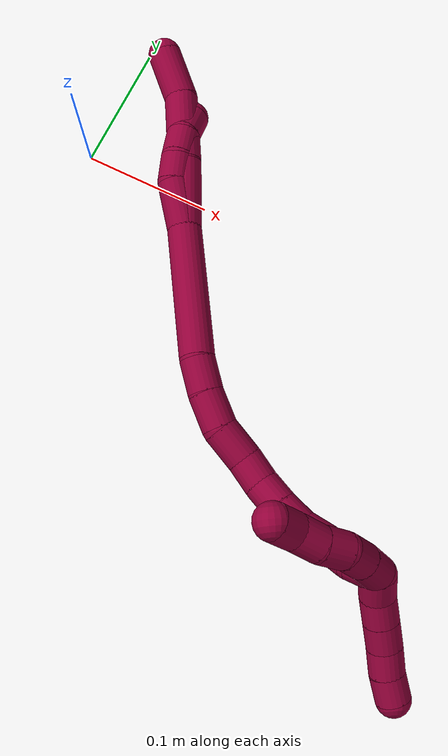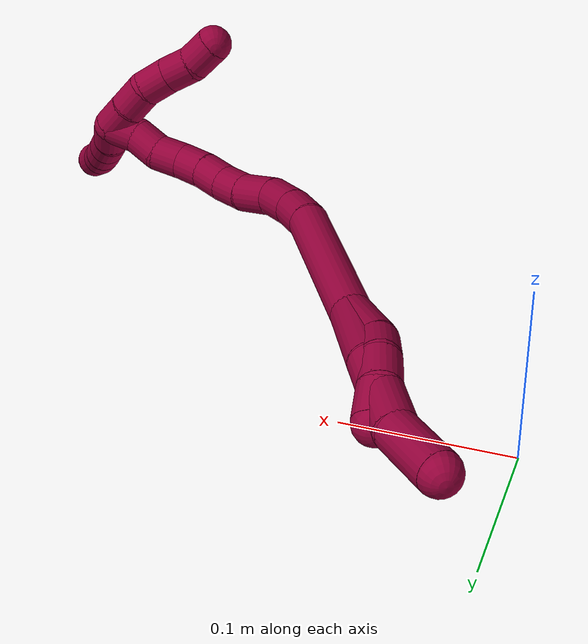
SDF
<sdf version="1.7">
 <world name="default">
  <model name="8">
   <static>0</static>
   <link name="8">
    <collision name="collision-cylinder-e_1_2_8">
     <pose>0.001796 -9.1e-05 -0.026475 3.13815 0.067744 3.04015</pose>
     <geometry><cylinder><radius>0.0125</radius><length>0.053071</length></cylinder></geometry>
     <surface>
      <friction><ode><mu>1.16</mu><mu2>1.16</mu2><slip1>0</slip1><slip2>0</slip2></ode></friction>
      <contact><ode><kp>1e+06</kp><kd>1</kd><max_vel>0</max_vel><min_depth>0.001</min_depth></ode></contact>
     </surface>
    </collision>
    <visual name="visual-cylinder-e_1_2_8">
     <pose>0.001796 -9.1e-05 -0.026475 3.13815 0.067744 3.04015</pose>
     <geometry><cylinder><radius>0.0125</radius><length>0.053071</length></cylinder></geometry>
     <material><ambient>0.584314 0 0.227451 1</ambient></material>
    </visual>
    <collision name="collision-cylinder-e_2_8_9">
     <pose>0.003382 -0.003438 -0.081158 3.0267 -0.007414 -0.128745</pose>
     <geometry><cylinder><radius>0.0125</radius><length>0.056793</length></cylinder></geometry>
     <surface>
      <friction><ode><mu>1.16</mu><mu2>1.16</mu2><slip1>0</slip1><slip2>0</slip2></ode></friction>
      <contact><ode><kp>1e+06</kp><kd>1</kd><max_vel>0</max_vel><min_depth>0.001</min_depth></ode></contact>
     </surface>
    </collision>
    <visual name="visual-cylinder-e_2_8_9">
     <pose>0.003382 -0.003438 -0.081158 3.0267 -0.007414 -0.128745</pose>
     <geometry><cylinder><radius>0.0125</radius><length>0.056793</length></cylinder></geometry>
     <material><ambient>0.584314 0 0.227451 1</ambient></material>
    </visual>
    <collision name="collision-cylinder-e_3_9_6">
     <pose>-0.001738 -0.005431 -0.128783 -3.0767 -0.247157 2.63039</pose>
     <geometry><cylinder><radius>0.0125</radius><length>0.040136</length></cylinder></geometry>
     <surface>
      <friction><ode><mu>1.16</mu><mu2>1.16</mu2><slip1>0</slip1><slip2>0</slip2></ode></friction>
      <contact><ode><kp>1e+06</kp><kd>1</kd><max_vel>0</max_vel><min_depth>0.001</min_depth></ode></contact>
     </surface>
    </collision>
    <visual name="visual-cylinder-e_3_9_6">
     <pose>-0.001738 -0.005431 -0.128783 -3.0767 -0.247157 2.63039</pose>
     <geometry><cylinder><radius>0.0125</radius><length>0.040136</length></cylinder></geometry>
     <material><ambient>0.584314 0 0.227451 1</ambient></material>
    </visual>
    <collision name="collision-cylinder-e_1_2_10">
     <pose>-0.002037 0.00184 -0.018233 -3.04099 -0.110692 1.66644</pose>
     <geometry><cylinder><radius>0.0125</radius><length>0.036876</length></cylinder></geometry>
     <surface>
      <friction><ode><mu>1.16</mu><mu2>1.16</mu2><slip1>0</slip1><slip2>0</slip2></ode></friction>
      <contact><ode><kp>1e+06</kp><kd>1</kd><max_vel>0</max_vel><min_depth>0.001</min_depth></ode></contact>
     </surface>
    </collision>
    <visual name="visual-cylinder-e_1_2_10">
     <pose>-0.002037 0.00184 -0.018233 -3.04099 -0.110692 1.66644</pose>
     <geometry><cylinder><radius>0.0125</radius><length>0.036876</length></cylinder></geometry>
     <material><ambient>0.584314 0 0.227451 1</ambient></material>
    </visual>
    <collision name="collision-cylinder-e_2_10_11">
     <pose>-0.002099 0.003507 -0.046296 3.12389 0.198222 2.96399</pose>
     <geometry><cylinder><radius>0.0125</radius><length>0.020057</length></cylinder></geometry>
     <surface>
      <friction><ode><mu>1.16</mu><mu2>1.16</mu2><slip1>0</slip1><slip2>0</slip2></ode></friction>
      <contact><ode><kp>1e+06</kp><kd>1</kd><max_vel>0</max_vel><min_depth>0.001</min_depth></ode></contact>
     </surface>
    </collision>
    <visual name="visual-cylinder-e_2_10_11">
     <pose>-0.002099 0.003507 -0.046296 3.12389 0.198222 2.96399</pose>
     <geometry><cylinder><radius>0.0125</radius><length>0.020057</length></cylinder></geometry>
     <material><ambient>0.584314 0 0.227451 1</ambient></material>
    </visual>
    <collision name="collision-cylinder-e_3_11_12">
     <pose>0.001881 0.00068 -0.066323 2.88708 0.188035 1.27025</pose>
     <geometry><cylinder><radius>0.0125</radius><length>0.021451</length></cylinder></geometry>
     <surface>
      <friction><ode><mu>1.16</mu><mu2>1.16</mu2><slip1>0</slip1><slip2>0</slip2></ode></friction>
      <contact><ode><kp>1e+06</kp><kd>1</kd><max_vel>0</max_vel><min_depth>0.001</min_depth></ode></contact>
     </surface>
    </collision>
    <visual name="visual-cylinder-e_3_11_12">
     <pose>0.001881 0.00068 -0.066323 2.88708 0.188035 1.27025</pose>
     <geometry><cylinder><radius>0.0125</radius><length>0.021451</length></cylinder></geometry>
     <material><ambient>0.584314 0 0.227451 1</ambient></material>
    </visual>
    <collision name="collision-cylinder-e_4_12_5">
     <pose>0.006466 -0.007222 -0.085609 2.61784 0.241025 0.848719</pose>
     <geometry><cylinder><radius>0.0125</radius><length>0.021616</length></cylinder></geometry>
     <surface>
      <friction><ode><mu>1.16</mu><mu2>1.16</mu2><slip1>0</slip1><slip2>0</slip2></ode></friction>
      <contact><ode><kp>1e+06</kp><kd>1</kd><max_vel>0</max_vel><min_depth>0.001</min_depth></ode></contact>
     </surface>
    </collision>
    <visual name="visual-cylinder-e_4_12_5">
     <pose>0.006466 -0.007222 -0.085609 2.61784 0.241025 0.848719</pose>
     <geometry><cylinder><radius>0.0125</radius><length>0.021616</length></cylinder></geometry>
     <material><ambient>0.584314 0 0.227451 1</ambient></material>
    </visual>
    <collision name="collision-cylinder-e_1_2_13">
     <pose>0.00232 0.004565 0.050487 -0.090168 0.045726 -0.002063</pose>
     <geometry><cylinder><radius>0.0125</radius><length>0.101492</length></cylinder></geometry>
     <surface>
      <friction><ode><mu>1.16</mu><mu2>1.16</mu2><slip1>0</slip1><slip2>0</slip2></ode></friction>
      <contact><ode><kp>1e+06</kp><kd>1</kd><max_vel>0</max_vel><min_depth>0.001</min_depth></ode></contact>
     </surface>
    </collision>
    <visual name="visual-cylinder-e_1_2_13">
     <pose>0.00232 0.004565 0.050487 -0.090168 0.045726 -0.002063</pose>
     <geometry><cylinder><radius>0.0125</radius><length>0.101492</length></cylinder></geometry>
     <material><ambient>0.584314 0 0.227451 1</ambient></material>
    </visual>
    <collision name="collision-cylinder-e_2_13_14">
     <pose>0.006515 0.007984 0.11325 0.092989 0.150997 0.007039</pose>
     <geometry><cylinder><radius>0.0125</radius><length>0.024943</length></cylinder></geometry>
     <surface>
      <friction><ode><mu>1.16</mu><mu2>1.16</mu2><slip1>0</slip1><slip2>0</slip2></ode></friction>
      <contact><ode><kp>1e+06</kp><kd>1</kd><max_vel>0</max_vel><min_depth>0.001</min_depth></ode></contact>
     </surface>
    </collision>
    <visual name="visual-cylinder-e_2_13_14">
     <pose>0.006515 0.007984 0.11325 0.092989 0.150997 0.007039</pose>
     <geometry><cylinder><radius>0.0125</radius><length>0.024943</length></cylinder></geometry>
     <material><ambient>0.584314 0 0.227451 1</ambient></material>
    </visual>
    <collision name="collision-cylinder-e_3_14_15">
     <pose>0.011906 0.004797 0.13801 0.162166 0.271016 0.022158</pose>
     <geometry><cylinder><radius>0.0125</radius><length>0.026257</length></cylinder></geometry>
     <surface>
      <friction><ode><mu>1.16</mu><mu2>1.16</mu2><slip1>0</slip1><slip2>0</slip2></ode></friction>
      <contact><ode><kp>1e+06</kp><kd>1</kd><max_vel>0</max_vel><min_depth>0.001</min_depth></ode></contact>
     </surface>
    </collision>
    <visual name="visual-cylinder-e_3_14_15">
     <pose>0.011906 0.004797 0.13801 0.162166 0.271016 0.022158</pose>
     <geometry><cylinder><radius>0.0125</radius><length>0.026257</length></cylinder></geometry>
     <material><ambient>0.584314 0 0.227451 1</ambient></material>
    </visual>
    <collision name="collision-cylinder-e_4_15_16">
     <pose>0.022145 -0.001539 0.161165 0.382576 0.52899 0.104804</pose>
     <geometry><cylinder><radius>0.0125</radius><length>0.026651</length></cylinder></geometry>
     <surface>
      <friction><ode><mu>1.16</mu><mu2>1.16</mu2><slip1>0</slip1><slip2>0</slip2></ode></friction>
      <contact><ode><kp>1e+06</kp><kd>1</kd><max_vel>0</max_vel><min_depth>0.001</min_depth></ode></contact>
     </surface>
    </collision>
    <visual name="visual-cylinder-e_4_15_16">
     <pose>0.022145 -0.001539 0.161165 0.382576 0.52899 0.104804</pose>
     <geometry><cylinder><radius>0.0125</radius><length>0.026651</length></cylinder></geometry>
     <material><ambient>0.584314 0 0.227451 1</ambient></material>
    </visual>
    <collision name="collision-cylinder-e_5_16_17">
     <pose>0.033747 -0.007182 0.180833 0.148713 0.492164 0.037417</pose>
     <geometry><cylinder><radius>0.0125</radius><length>0.020641</length></cylinder></geometry>
     <surface>
      <friction><ode><mu>1.16</mu><mu2>1.16</mu2><slip1>0</slip1><slip2>0</slip2></ode></friction>
      <contact><ode><kp>1e+06</kp><kd>1</kd><max_vel>0</max_vel><min_depth>0.001</min_depth></ode></contact>
     </surface>
    </collision>
    <visual name="visual-cylinder-e_5_16_17">
     <pose>0.033747 -0.007182 0.180833 0.148713 0.492164 0.037417</pose>
     <geometry><cylinder><radius>0.0125</radius><length>0.020641</length></cylinder></geometry>
     <material><ambient>0.584314 0 0.227451 1</ambient></material>
    </visual>
    <collision name="collision-cylinder-e_6_17_18">
     <pose>0.044366 -0.008187 0.198016 -0.041767 0.611195 -0.013178</pose>
     <geometry><cylinder><radius>0.0125</radius><length>0.020015</length></cylinder></geometry>
     <surface>
      <friction><ode><mu>1.16</mu><mu2>1.16</mu2><slip1>0</slip1><slip2>0</slip2></ode></friction>
      <contact><ode><kp>1e+06</kp><kd>1</kd><max_vel>0</max_vel><min_depth>0.001</min_depth></ode></contact>
     </surface>
    </collision>
    <visual name="visual-cylinder-e_6_17_18">
     <pose>0.044366 -0.008187 0.198016 -0.041767 0.611195 -0.013178</pose>
     <geometry><cylinder><radius>0.0125</radius><length>0.020015</length></cylinder></geometry>
     <material><ambient>0.584314 0 0.227451 1</ambient></material>
    </visual>
    <collision name="collision-cylinder-e_7_18_19">
     <pose>0.05648 -0.008456 0.213889 0.079423 0.690698 0.028587</pose>
     <geometry><cylinder><radius>0.0125</radius><length>0.02</length></cylinder></geometry>
     <surface>
      <friction><ode><mu>1.16</mu><mu2>1.16</mu2><slip1>0</slip1><slip2>0</slip2></ode></friction>
      <contact><ode><kp>1e+06</kp><kd>1</kd><max_vel>0</max_vel><min_depth>0.001</min_depth></ode></contact>
     </surface>
    </collision>
    <visual name="visual-cylinder-e_7_18_19">
     <pose>0.05648 -0.008456 0.213889 0.079423 0.690698 0.028587</pose>
     <geometry><cylinder><radius>0.0125</radius><length>0.02</length></cylinder></geometry>
     <material><ambient>0.584314 0 0.227451 1</ambient></material>
    </visual>
    <collision name="collision-cylinder-e_8_19_20">
     <pose>0.07083 -0.009373 0.227593 0.050663 0.923803 0.025225</pose>
     <geometry><cylinder><radius>0.0125</radius><length>0.020001</length></cylinder></geometry>
     <surface>
      <friction><ode><mu>1.16</mu><mu2>1.16</mu2><slip1>0</slip1><slip2>0</slip2></ode></friction>
      <contact><ode><kp>1e+06</kp><kd>1</kd><max_vel>0</max_vel><min_depth>0.001</min_depth></ode></contact>
     </surface>
    </collision>
    <visual name="visual-cylinder-e_8_19_20">
     <pose>0.07083 -0.009373 0.227593 0.050663 0.923803 0.025225</pose>
     <geometry><cylinder><radius>0.0125</radius><length>0.020001</length></cylinder></geometry>
     <material><ambient>0.584314 0 0.227451 1</ambient></material>
    </visual>
    <collision name="collision-cylinder-e_9_20_21">
     <pose>0.085866 -0.006976 0.240164 -0.39134 0.783257 -0.163338</pose>
     <geometry><cylinder><radius>0.0125</radius><length>0.020001</length></cylinder></geometry>
     <surface>
      <friction><ode><mu>1.16</mu><mu2>1.16</mu2><slip1>0</slip1><slip2>0</slip2></ode></friction>
      <contact><ode><kp>1e+06</kp><kd>1</kd><max_vel>0</max_vel><min_depth>0.001</min_depth></ode></contact>
     </surface>
    </collision>
    <visual name="visual-cylinder-e_9_20_21">
     <pose>0.085866 -0.006976 0.240164 -0.39134 0.783257 -0.163338</pose>
     <geometry><cylinder><radius>0.0125</radius><length>0.020001</length></cylinder></geometry>
     <material><ambient>0.584314 0 0.227451 1</ambient></material>
    </visual>
    <collision name="collision-cylinder-e_10_21_1">
     <pose>0.101584 -0.003788 0.251688 -0.097147 1.04764 -0.056146</pose>
     <geometry><cylinder><radius>0.0125</radius><length>0.02</length></cylinder></geometry>
     <surface>
      <friction><ode><mu>1.16</mu><mu2>1.16</mu2><slip1>0</slip1><slip2>0</slip2></ode></friction>
      <contact><ode><kp>1e+06</kp><kd>1</kd><max_vel>0</max_vel><min_depth>0.001</min_depth></ode></contact>
     </surface>
    </collision>
    <visual name="visual-cylinder-e_10_21_1">
     <pose>0.101584 -0.003788 0.251688 -0.097147 1.04764 -0.056146</pose>
     <geometry><cylinder><radius>0.0125</radius><length>0.02</length></cylinder></geometry>
     <material><ambient>0.584314 0 0.227451 1</ambient></material>
    </visual>
    <collision name="collision-cylinder-e_1_1_22">
     <pose>0.106665 0.005215 0.252837 -1.99266 -0.366258 0.557353</pose>
     <geometry><cylinder><radius>0.0125</radius><length>0.02</length></cylinder></geometry>
     <surface>
      <friction><ode><mu>1.16</mu><mu2>1.16</mu2><slip1>0</slip1><slip2>0</slip2></ode></friction>
      <contact><ode><kp>1e+06</kp><kd>1</kd><max_vel>0</max_vel><min_depth>0.001</min_depth></ode></contact>
     </surface>
    </collision>
    <visual name="visual-cylinder-e_1_1_22">
     <pose>0.106665 0.005215 0.252837 -1.99266 -0.366258 0.557353</pose>
     <geometry><cylinder><radius>0.0125</radius><length>0.02</length></cylinder></geometry>
     <material><ambient>0.584314 0 0.227451 1</ambient></material>
    </visual>
    <collision name="collision-cylinder-e_2_22_23">
     <pose>0.099047 0.022412 0.246121 -1.89261 -0.415605 0.569223</pose>
     <geometry><cylinder><radius>0.0125</radius><length>0.02</length></cylinder></geometry>
     <surface>
      <friction><ode><mu>1.16</mu><mu2>1.16</mu2><slip1>0</slip1><slip2>0</slip2></ode></friction>
      <contact><ode><kp>1e+06</kp><kd>1</kd><max_vel>0</max_vel><min_depth>0.001</min_depth></ode></contact>
     </surface>
    </collision>
    <visual name="visual-cylinder-e_2_22_23">
     <pose>0.099047 0.022412 0.246121 -1.89261 -0.415605 0.569223</pose>
     <geometry><cylinder><radius>0.0125</radius><length>0.02</length></cylinder></geometry>
     <material><ambient>0.584314 0 0.227451 1</ambient></material>
    </visual>
    <collision name="collision-cylinder-e_3_23_24">
     <pose>0.088206 0.0381 0.241083 -1.86771 -0.748184 0.975739</pose>
     <geometry><cylinder><radius>0.0125</radius><length>0.02</length></cylinder></geometry>
     <surface>
      <friction><ode><mu>1.16</mu><mu2>1.16</mu2><slip1>0</slip1><slip2>0</slip2></ode></friction>
      <contact><ode><kp>1e+06</kp><kd>1</kd><max_vel>0</max_vel><min_depth>0.001</min_depth></ode></contact>
     </surface>
    </collision>
    <visual name="visual-cylinder-e_3_23_24">
     <pose>0.088206 0.0381 0.241083 -1.86771 -0.748184 0.975739</pose>
     <geometry><cylinder><radius>0.0125</radius><length>0.02</length></cylinder></geometry>
     <material><ambient>0.584314 0 0.227451 1</ambient></material>
    </visual>
    <collision name="collision-cylinder-e_4_24_25">
     <pose>0.075001 0.051651 0.234912 -2.12244 -0.694728 1.14978</pose>
     <geometry><cylinder><radius>0.0125</radius><length>0.02</length></cylinder></geometry>
     <surface>
      <friction><ode><mu>1.16</mu><mu2>1.16</mu2><slip1>0</slip1><slip2>0</slip2></ode></friction>
      <contact><ode><kp>1e+06</kp><kd>1</kd><max_vel>0</max_vel><min_depth>0.001</min_depth></ode></contact>
     </surface>
    </collision>
    <visual name="visual-cylinder-e_4_24_25">
     <pose>0.075001 0.051651 0.234912 -2.12244 -0.694728 1.14978</pose>
     <geometry><cylinder><radius>0.0125</radius><length>0.02</length></cylinder></geometry>
     <material><ambient>0.584314 0 0.227451 1</ambient></material>
    </visual>
    <collision name="collision-cylinder-e_5_25_4">
     <pose>0.063847 0.066607 0.22831 -1.86789 -0.495257 0.658707</pose>
     <geometry><cylinder><radius>0.0125</radius><length>0.02</length></cylinder></geometry>
     <surface>
      <friction><ode><mu>1.16</mu><mu2>1.16</mu2><slip1>0</slip1><slip2>0</slip2></ode></friction>
      <contact><ode><kp>1e+06</kp><kd>1</kd><max_vel>0</max_vel><min_depth>0.001</min_depth></ode></contact>
     </surface>
    </collision>
    <visual name="visual-cylinder-e_5_25_4">
     <pose>0.063847 0.066607 0.22831 -1.86789 -0.495257 0.658707</pose>
     <geometry><cylinder><radius>0.0125</radius><length>0.02</length></cylinder></geometry>
     <material><ambient>0.584314 0 0.227451 1</ambient></material>
    </visual>
    <collision name="collision-cylinder-e_1_1_26">
     <pose>0.10858 -0.010871 0.262982 0.874867 -0.167405 -0.07843</pose>
     <geometry><cylinder><radius>0.0125</radius><length>0.02</length></cylinder></geometry>
     <surface>
      <friction><ode><mu>1.16</mu><mu2>1.16</mu2><slip1>0</slip1><slip2>0</slip2></ode></friction>
      <contact><ode><kp>1e+06</kp><kd>1</kd><max_vel>0</max_vel><min_depth>0.001</min_depth></ode></contact>
     </surface>
    </collision>
    <visual name="visual-cylinder-e_1_1_26">
     <pose>0.10858 -0.010871 0.262982 0.874867 -0.167405 -0.07843</pose>
     <geometry><cylinder><radius>0.0125</radius><length>0.02</length></cylinder></geometry>
     <material><ambient>0.584314 0 0.227451 1</ambient></material>
    </visual>
    <collision name="collision-cylinder-e_2_26_27">
     <pose>0.106526 -0.024516 0.277234 0.653914 -0.038832 -0.01317</pose>
     <geometry><cylinder><radius>0.0125</radius><length>0.02</length></cylinder></geometry>
     <surface>
      <friction><ode><mu>1.16</mu><mu2>1.16</mu2><slip1>0</slip1><slip2>0</slip2></ode></friction>
      <contact><ode><kp>1e+06</kp><kd>1</kd><max_vel>0</max_vel><min_depth>0.001</min_depth></ode></contact>
     </surface>
    </collision>
    <visual name="visual-cylinder-e_2_26_27">
     <pose>0.106526 -0.024516 0.277234 0.653914 -0.038832 -0.01317</pose>
     <geometry><cylinder><radius>0.0125</radius><length>0.02</length></cylinder></geometry>
     <material><ambient>0.584314 0 0.227451 1</ambient></material>
    </visual>
    <collision name="collision-cylinder-e_3_27_28">
     <pose>0.105755 -0.036479 0.293242 0.629586 -0.038311 -0.012476</pose>
     <geometry><cylinder><radius>0.0125</radius><length>0.02</length></cylinder></geometry>
     <surface>
      <friction><ode><mu>1.16</mu><mu2>1.16</mu2><slip1>0</slip1><slip2>0</slip2></ode></friction>
      <contact><ode><kp>1e+06</kp><kd>1</kd><max_vel>0</max_vel><min_depth>0.001</min_depth></ode></contact>
     </surface>
    </collision>
    <visual name="visual-cylinder-e_3_27_28">
     <pose>0.105755 -0.036479 0.293242 0.629586 -0.038311 -0.012476</pose>
     <geometry><cylinder><radius>0.0125</radius><length>0.02</length></cylinder></geometry>
     <material><ambient>0.584314 0 0.227451 1</ambient></material>
    </visual>
    <collision name="collision-cylinder-e_4_28_29">
     <pose>0.104714 -0.04741 0.309926 0.530348 -0.065857 -0.017891</pose>
     <geometry><cylinder><radius>0.0125</radius><length>0.02</length></cylinder></geometry>
     <surface>
      <friction><ode><mu>1.16</mu><mu2>1.16</mu2><slip1>0</slip1><slip2>0</slip2></ode></friction>
      <contact><ode><kp>1e+06</kp><kd>1</kd><max_vel>0</max_vel><min_depth>0.001</min_depth></ode></contact>
     </surface>
    </collision>
    <visual name="visual-cylinder-e_4_28_29">
     <pose>0.104714 -0.04741 0.309926 0.530348 -0.065857 -0.017891</pose>
     <geometry><cylinder><radius>0.0125</radius><length>0.02</length></cylinder></geometry>
     <material><ambient>0.584314 0 0.227451 1</ambient></material>
    </visual>
    <collision name="collision-cylinder-e_5_29_3">
     <pose>0.104667 -0.057167 0.327334 0.491408 0.061212 0.015355</pose>
     <geometry><cylinder><radius>0.0125</radius><length>0.02</length></cylinder></geometry>
     <surface>
      <friction><ode><mu>1.16</mu><mu2>1.16</mu2><slip1>0</slip1><slip2>0</slip2></ode></friction>
      <contact><ode><kp>1e+06</kp><kd>1</kd><max_vel>0</max_vel><min_depth>0.001</min_depth></ode></contact>
     </surface>
    </collision>
    <visual name="visual-cylinder-e_5_29_3">
     <pose>0.104667 -0.057167 0.327334 0.491408 0.061212 0.015355</pose>
     <geometry><cylinder><radius>0.0125</radius><length>0.02</length></cylinder></geometry>
     <material><ambient>0.584314 0 0.227451 1</ambient></material>
    </visual>
    <collision name="collision-sphere-3">
     <pose>0.105279 -0.061877 0.336134 0 -0 0</pose>
     <geometry><sphere><radius>0.0125</radius></sphere></geometry>
     <surface>
      <friction><ode><mu>1.16</mu><mu2>1.16</mu2><slip1>0</slip1><slip2>0</slip2></ode></friction>
      <contact><ode><kp>1e+06</kp><kd>1</kd><max_vel>0</max_vel><min_depth>0.001</min_depth></ode></contact>
     </surface>
    </collision>
    <visual name="visual-sphere-3">
     <pose>0.105279 -0.061877 0.336134 0 -0 0</pose>
     <geometry><sphere><radius>0.0125</radius></sphere></geometry>
     <material><ambient>0.584314 0 0.227451 1</ambient></material>
    </visual>
    <collision name="collision-sphere-29">
     <pose>0.104056 -0.052457 0.318534 0 -0 0</pose>
     <geometry><sphere><radius>0.0125</radius></sphere></geometry>
     <surface>
      <friction><ode><mu>1.16</mu><mu2>1.16</mu2><slip1>0</slip1><slip2>0</slip2></ode></friction>
      <contact><ode><kp>1e+06</kp><kd>1</kd><max_vel>0</max_vel><min_depth>0.001</min_depth></ode></contact>
     </surface>
    </collision>
    <visual name="visual-sphere-29">
     <pose>0.104056 -0.052457 0.318534 0 -0 0</pose>
     <geometry><sphere><radius>0.0125</radius></sphere></geometry>
     <material><ambient>0.584314 0 0.227451 1</ambient></material>
    </visual>
    <collision name="collision-sphere-28">
     <pose>0.105372 -0.042362 0.301319 0 -0 0</pose>
     <geometry><sphere><radius>0.0125</radius></sphere></geometry>
     <surface>
      <friction><ode><mu>1.16</mu><mu2>1.16</mu2><slip1>0</slip1><slip2>0</slip2></ode></friction>
      <contact><ode><kp>1e+06</kp><kd>1</kd><max_vel>0</max_vel><min_depth>0.001</min_depth></ode></contact>
     </surface>
    </collision>
    <visual name="visual-sphere-28">
     <pose>0.105372 -0.042362 0.301319 0 -0 0</pose>
     <geometry><sphere><radius>0.0125</radius></sphere></geometry>
     <material><ambient>0.584314 0 0.227451 1</ambient></material>
    </visual>
    <collision name="collision-sphere-27">
     <pose>0.106138 -0.030595 0.285165 0 -0 0</pose>
     <geometry><sphere><radius>0.0125</radius></sphere></geometry>
     <surface>
      <friction><ode><mu>1.16</mu><mu2>1.16</mu2><slip1>0</slip1><slip2>0</slip2></ode></friction>
      <contact><ode><kp>1e+06</kp><kd>1</kd><max_vel>0</max_vel><min_depth>0.001</min_depth></ode></contact>
     </surface>
    </collision>
    <visual name="visual-sphere-27">
     <pose>0.106138 -0.030595 0.285165 0 -0 0</pose>
     <geometry><sphere><radius>0.0125</radius></sphere></geometry>
     <material><ambient>0.584314 0 0.227451 1</ambient></material>
    </visual>
    <collision name="collision-sphere-26">
     <pose>0.106914 -0.018438 0.269303 0 -0 0</pose>
     <geometry><sphere><radius>0.0125</radius></sphere></geometry>
     <surface>
      <friction><ode><mu>1.16</mu><mu2>1.16</mu2><slip1>0</slip1><slip2>0</slip2></ode></friction>
      <contact><ode><kp>1e+06</kp><kd>1</kd><max_vel>0</max_vel><min_depth>0.001</min_depth></ode></contact>
     </surface>
    </collision>
    <visual name="visual-sphere-26">
     <pose>0.106914 -0.018438 0.269303 0 -0 0</pose>
     <geometry><sphere><radius>0.0125</radius></sphere></geometry>
     <material><ambient>0.584314 0 0.227451 1</ambient></material>
    </visual>
    <collision name="collision-sphere-4">
     <pose>0.059094 0.07502 0.225735 0 -0 0</pose>
     <geometry><sphere><radius>0.0125</radius></sphere></geometry>
     <surface>
      <friction><ode><mu>1.16</mu><mu2>1.16</mu2><slip1>0</slip1><slip2>0</slip2></ode></friction>
      <contact><ode><kp>1e+06</kp><kd>1</kd><max_vel>0</max_vel><min_depth>0.001</min_depth></ode></contact>
     </surface>
    </collision>
    <visual name="visual-sphere-4">
     <pose>0.059094 0.07502 0.225735 0 -0 0</pose>
     <geometry><sphere><radius>0.0125</radius></sphere></geometry>
     <material><ambient>0.584314 0 0.227451 1</ambient></material>
    </visual>
    <collision name="collision-sphere-25">
     <pose>0.0686 0.058194 0.230886 0 -0 0</pose>
     <geometry><sphere><radius>0.0125</radius></sphere></geometry>
     <surface>
      <friction><ode><mu>1.16</mu><mu2>1.16</mu2><slip1>0</slip1><slip2>0</slip2></ode></friction>
      <contact><ode><kp>1e+06</kp><kd>1</kd><max_vel>0</max_vel><min_depth>0.001</min_depth></ode></contact>
     </surface>
    </collision>
    <visual name="visual-sphere-25">
     <pose>0.0686 0.058194 0.230886 0 -0 0</pose>
     <geometry><sphere><radius>0.0125</radius></sphere></geometry>
     <material><ambient>0.584314 0 0.227451 1</ambient></material>
    </visual>
    <collision name="collision-sphere-24">
     <pose>0.081403 0.045108 0.238938 0 -0 0</pose>
     <geometry><sphere><radius>0.0125</radius></sphere></geometry>
     <surface>
      <friction><ode><mu>1.16</mu><mu2>1.16</mu2><slip1>0</slip1><slip2>0</slip2></ode></friction>
      <contact><ode><kp>1e+06</kp><kd>1</kd><max_vel>0</max_vel><min_depth>0.001</min_depth></ode></contact>
     </surface>
    </collision>
    <visual name="visual-sphere-24">
     <pose>0.081403 0.045108 0.238938 0 -0 0</pose>
     <geometry><sphere><radius>0.0125</radius></sphere></geometry>
     <material><ambient>0.584314 0 0.227451 1</ambient></material>
    </visual>
    <collision name="collision-sphere-23">
     <pose>0.095009 0.031091 0.243227 0 -0 0</pose>
     <geometry><sphere><radius>0.0125</radius></sphere></geometry>
     <surface>
      <friction><ode><mu>1.16</mu><mu2>1.16</mu2><slip1>0</slip1><slip2>0</slip2></ode></friction>
      <contact><ode><kp>1e+06</kp><kd>1</kd><max_vel>0</max_vel><min_depth>0.001</min_depth></ode></contact>
     </surface>
    </collision>
    <visual name="visual-sphere-23">
     <pose>0.095009 0.031091 0.243227 0 -0 0</pose>
     <geometry><sphere><radius>0.0125</radius></sphere></geometry>
     <material><ambient>0.584314 0 0.227451 1</ambient></material>
    </visual>
    <collision name="collision-sphere-22">
     <pose>0.103084 0.013733 0.249014 0 -0 0</pose>
     <geometry><sphere><radius>0.0125</radius></sphere></geometry>
     <surface>
      <friction><ode><mu>1.16</mu><mu2>1.16</mu2><slip1>0</slip1><slip2>0</slip2></ode></friction>
      <contact><ode><kp>1e+06</kp><kd>1</kd><max_vel>0</max_vel><min_depth>0.001</min_depth></ode></contact>
     </surface>
    </collision>
    <visual name="visual-sphere-22">
     <pose>0.103084 0.013733 0.249014 0 -0 0</pose>
     <geometry><sphere><radius>0.0125</radius></sphere></geometry>
     <material><ambient>0.584314 0 0.227451 1</ambient></material>
    </visual>
    <collision name="collision-sphere-1">
     <pose>0.110247 -0.003303 0.25666 0 -0 0</pose>
     <geometry><sphere><radius>0.0125</radius></sphere></geometry>
     <surface>
      <friction><ode><mu>1.16</mu><mu2>1.16</mu2><slip1>0</slip1><slip2>0</slip2></ode></friction>
      <contact><ode><kp>1e+06</kp><kd>1</kd><max_vel>0</max_vel><min_depth>0.001</min_depth></ode></contact>
     </surface>
    </collision>
    <visual name="visual-sphere-1">
     <pose>0.110247 -0.003303 0.25666 0 -0 0</pose>
     <geometry><sphere><radius>0.0125</radius></sphere></geometry>
     <material><ambient>0.584314 0 0.227451 1</ambient></material>
    </visual>
    <collision name="collision-sphere-21">
     <pose>0.092922 -0.004273 0.246715 0 -0 0</pose>
     <geometry><sphere><radius>0.0125</radius></sphere></geometry>
     <surface>
      <friction><ode><mu>1.16</mu><mu2>1.16</mu2><slip1>0</slip1><slip2>0</slip2></ode></friction>
      <contact><ode><kp>1e+06</kp><kd>1</kd><max_vel>0</max_vel><min_depth>0.001</min_depth></ode></contact>
     </surface>
    </collision>
    <visual name="visual-sphere-21">
     <pose>0.092922 -0.004273 0.246715 0 -0 0</pose>
     <geometry><sphere><radius>0.0125</radius></sphere></geometry>
     <material><ambient>0.584314 0 0.227451 1</ambient></material>
    </visual>
    <collision name="collision-sphere-11">
     <pose>-0.000124 0.003333 -0.056126 0 -0 0</pose>
     <geometry><sphere><radius>0.0125</radius></sphere></geometry>
     <surface>
      <friction><ode><mu>1.16</mu><mu2>1.16</mu2><slip1>0</slip1><slip2>0</slip2></ode></friction>
      <contact><ode><kp>1e+06</kp><kd>1</kd><max_vel>0</max_vel><min_depth>0.001</min_depth></ode></contact>
     </surface>
    </collision>
    <visual name="visual-sphere-11">
     <pose>-0.000124 0.003333 -0.056126 0 -0 0</pose>
     <geometry><sphere><radius>0.0125</radius></sphere></geometry>
     <material><ambient>0.584314 0 0.227451 1</ambient></material>
    </visual>
    <collision name="collision-sphere-10">
     <pose>-0.004074 0.003681 -0.036465 0 -0 0</pose>
     <geometry><sphere><radius>0.0125</radius></sphere></geometry>
     <surface>
      <friction><ode><mu>1.16</mu><mu2>1.16</mu2><slip1>0</slip1><slip2>0</slip2></ode></friction>
      <contact><ode><kp>1e+06</kp><kd>1</kd><max_vel>0</max_vel><min_depth>0.001</min_depth></ode></contact>
     </surface>
    </collision>
    <visual name="visual-sphere-10">
     <pose>-0.004074 0.003681 -0.036465 0 -0 0</pose>
     <geometry><sphere><radius>0.0125</radius></sphere></geometry>
     <material><ambient>0.584314 0 0.227451 1</ambient></material>
    </visual>
    <collision name="collision-sphere-6">
     <pose>-0.006648 -0.004169 -0.1482 0 -0 0</pose>
     <geometry><sphere><radius>0.0125</radius></sphere></geometry>
     <surface>
      <friction><ode><mu>1.16</mu><mu2>1.16</mu2><slip1>0</slip1><slip2>0</slip2></ode></friction>
      <contact><ode><kp>1e+06</kp><kd>1</kd><max_vel>0</max_vel><min_depth>0.001</min_depth></ode></contact>
     </surface>
    </collision>
    <visual name="visual-sphere-6">
     <pose>-0.006648 -0.004169 -0.1482 0 -0 0</pose>
     <geometry><sphere><radius>0.0125</radius></sphere></geometry>
     <material><ambient>0.584314 0 0.227451 1</ambient></material>
    </visual>
    <collision name="collision-sphere-9">
     <pose>0.003171 -0.006693 -0.109366 0 -0 0</pose>
     <geometry><sphere><radius>0.0125</radius></sphere></geometry>
     <surface>
      <friction><ode><mu>1.16</mu><mu2>1.16</mu2><slip1>0</slip1><slip2>0</slip2></ode></friction>
      <contact><ode><kp>1e+06</kp><kd>1</kd><max_vel>0</max_vel><min_depth>0.001</min_depth></ode></contact>
     </surface>
    </collision>
    <visual name="visual-sphere-9">
     <pose>0.003171 -0.006693 -0.109366 0 -0 0</pose>
     <geometry><sphere><radius>0.0125</radius></sphere></geometry>
     <material><ambient>0.584314 0 0.227451 1</ambient></material>
    </visual>
    <collision name="collision-sphere-2">
     <geometry><sphere><radius>0.0125</radius></sphere></geometry>
     <surface>
      <friction><ode><mu>1.16</mu><mu2>1.16</mu2><slip1>0</slip1><slip2>0</slip2></ode></friction>
      <contact><ode><kp>1e+06</kp><kd>1</kd><max_vel>0</max_vel><min_depth>0.001</min_depth></ode></contact>
     </surface>
    </collision>
    <visual name="visual-sphere-2">
     <geometry><sphere><radius>0.0125</radius></sphere></geometry>
     <material><ambient>0.584314 0 0.227451 1</ambient></material>
    </visual>
    <collision name="collision-sphere-19">
     <pose>0.062851 -0.009068 0.221573 0 -0 0</pose>
     <geometry><sphere><radius>0.0125</radius></sphere></geometry>
     <surface>
      <friction><ode><mu>1.16</mu><mu2>1.16</mu2><slip1>0</slip1><slip2>0</slip2></ode></friction>
      <contact><ode><kp>1e+06</kp><kd>1</kd><max_vel>0</max_vel><min_depth>0.001</min_depth></ode></contact>
     </surface>
    </collision>
    <visual name="visual-sphere-19">
     <pose>0.062851 -0.009068 0.221573 0 -0 0</pose>
     <geometry><sphere><radius>0.0125</radius></sphere></geometry>
     <material><ambient>0.584314 0 0.227451 1</ambient></material>
    </visual>
    <collision name="collision-sphere-8">
     <pose>0.003593 -0.000182 -0.052949 0 -0 0</pose>
     <geometry><sphere><radius>0.0125</radius></sphere></geometry>
     <surface>
      <friction><ode><mu>1.16</mu><mu2>1.16</mu2><slip1>0</slip1><slip2>0</slip2></ode></friction>
      <contact><ode><kp>1e+06</kp><kd>1</kd><max_vel>0</max_vel><min_depth>0.001</min_depth></ode></contact>
     </surface>
    </collision>
    <visual name="visual-sphere-8">
     <pose>0.003593 -0.000182 -0.052949 0 -0 0</pose>
     <geometry><sphere><radius>0.0125</radius></sphere></geometry>
     <material><ambient>0.584314 0 0.227451 1</ambient></material>
    </visual>
    <collision name="collision-sphere-12">
     <pose>0.003886 -0.001973 -0.07652 0 -0 0</pose>
     <geometry><sphere><radius>0.0125</radius></sphere></geometry>
     <surface>
      <friction><ode><mu>1.16</mu><mu2>1.16</mu2><slip1>0</slip1><slip2>0</slip2></ode></friction>
      <contact><ode><kp>1e+06</kp><kd>1</kd><max_vel>0</max_vel><min_depth>0.001</min_depth></ode></contact>
     </surface>
    </collision>
    <visual name="visual-sphere-12">
     <pose>0.003886 -0.001973 -0.07652 0 -0 0</pose>
     <geometry><sphere><radius>0.0125</radius></sphere></geometry>
     <material><ambient>0.584314 0 0.227451 1</ambient></material>
    </visual>
    <collision name="collision-sphere-5">
     <pose>0.009046 -0.012471 -0.094698 0 -0 0</pose>
     <geometry><sphere><radius>0.0125</radius></sphere></geometry>
     <surface>
      <friction><ode><mu>1.16</mu><mu2>1.16</mu2><slip1>0</slip1><slip2>0</slip2></ode></friction>
      <contact><ode><kp>1e+06</kp><kd>1</kd><max_vel>0</max_vel><min_depth>0.001</min_depth></ode></contact>
     </surface>
    </collision>
    <visual name="visual-sphere-5">
     <pose>0.009046 -0.012471 -0.094698 0 -0 0</pose>
     <geometry><sphere><radius>0.0125</radius></sphere></geometry>
     <material><ambient>0.584314 0 0.227451 1</ambient></material>
    </visual>
    <collision name="collision-sphere-13">
     <pose>0.004639 0.009129 0.100974 0 -0 0</pose>
     <geometry><sphere><radius>0.0125</radius></sphere></geometry>
     <surface>
      <friction><ode><mu>1.16</mu><mu2>1.16</mu2><slip1>0</slip1><slip2>0</slip2></ode></friction>
      <contact><ode><kp>1e+06</kp><kd>1</kd><max_vel>0</max_vel><min_depth>0.001</min_depth></ode></contact>
     </surface>
    </collision>
    <visual name="visual-sphere-13">
     <pose>0.004639 0.009129 0.100974 0 -0 0</pose>
     <geometry><sphere><radius>0.0125</radius></sphere></geometry>
     <material><ambient>0.584314 0 0.227451 1</ambient></material>
    </visual>
    <collision name="collision-sphere-14">
     <pose>0.008391 0.00684 0.125527 0 -0 0</pose>
     <geometry><sphere><radius>0.0125</radius></sphere></geometry>
     <surface>
      <friction><ode><mu>1.16</mu><mu2>1.16</mu2><slip1>0</slip1><slip2>0</slip2></ode></friction>
      <contact><ode><kp>1e+06</kp><kd>1</kd><max_vel>0</max_vel><min_depth>0.001</min_depth></ode></contact>
     </surface>
    </collision>
    <visual name="visual-sphere-14">
     <pose>0.008391 0.00684 0.125527 0 -0 0</pose>
     <geometry><sphere><radius>0.0125</radius></sphere></geometry>
     <material><ambient>0.584314 0 0.227451 1</ambient></material>
    </visual>
    <collision name="collision-sphere-15">
     <pose>0.01542 0.002755 0.150493 0 -0 0</pose>
     <geometry><sphere><radius>0.0125</radius></sphere></geometry>
     <surface>
      <friction><ode><mu>1.16</mu><mu2>1.16</mu2><slip1>0</slip1><slip2>0</slip2></ode></friction>
      <contact><ode><kp>1e+06</kp><kd>1</kd><max_vel>0</max_vel><min_depth>0.001</min_depth></ode></contact>
     </surface>
    </collision>
    <visual name="visual-sphere-15">
     <pose>0.01542 0.002755 0.150493 0 -0 0</pose>
     <geometry><sphere><radius>0.0125</radius></sphere></geometry>
     <material><ambient>0.584314 0 0.227451 1</ambient></material>
    </visual>
    <collision name="collision-sphere-16">
     <pose>0.02887 -0.005834 0.171838 0 -0 0</pose>
     <geometry><sphere><radius>0.0125</radius></sphere></geometry>
     <surface>
      <friction><ode><mu>1.16</mu><mu2>1.16</mu2><slip1>0</slip1><slip2>0</slip2></ode></friction>
      <contact><ode><kp>1e+06</kp><kd>1</kd><max_vel>0</max_vel><min_depth>0.001</min_depth></ode></contact>
     </surface>
    </collision>
    <visual name="visual-sphere-16">
     <pose>0.02887 -0.005834 0.171838 0 -0 0</pose>
     <geometry><sphere><radius>0.0125</radius></sphere></geometry>
     <material><ambient>0.584314 0 0.227451 1</ambient></material>
    </visual>
    <collision name="collision-sphere-17">
     <pose>0.038623 -0.008529 0.189828 0 -0 0</pose>
     <geometry><sphere><radius>0.0125</radius></sphere></geometry>
     <surface>
      <friction><ode><mu>1.16</mu><mu2>1.16</mu2><slip1>0</slip1><slip2>0</slip2></ode></friction>
      <contact><ode><kp>1e+06</kp><kd>1</kd><max_vel>0</max_vel><min_depth>0.001</min_depth></ode></contact>
     </surface>
    </collision>
    <visual name="visual-sphere-17">
     <pose>0.038623 -0.008529 0.189828 0 -0 0</pose>
     <geometry><sphere><radius>0.0125</radius></sphere></geometry>
     <material><ambient>0.584314 0 0.227451 1</ambient></material>
    </visual>
    <collision name="collision-sphere-18">
     <pose>0.050109 -0.007845 0.206205 0 -0 0</pose>
     <geometry><sphere><radius>0.0125</radius></sphere></geometry>
     <surface>
      <friction><ode><mu>1.16</mu><mu2>1.16</mu2><slip1>0</slip1><slip2>0</slip2></ode></friction>
      <contact><ode><kp>1e+06</kp><kd>1</kd><max_vel>0</max_vel><min_depth>0.001</min_depth></ode></contact>
     </surface>
    </collision>
    <visual name="visual-sphere-18">
     <pose>0.050109 -0.007845 0.206205 0 -0 0</pose>
     <geometry><sphere><radius>0.0125</radius></sphere></geometry>
     <material><ambient>0.584314 0 0.227451 1</ambient></material>
    </visual>
    <collision name="collision-sphere-20">
     <pose>0.078809 -0.009679 0.233614 0 -0 0</pose>
     <geometry><sphere><radius>0.0125</radius></sphere></geometry>
     <surface>
      <friction><ode><mu>1.16</mu><mu2>1.16</mu2><slip1>0</slip1><slip2>0</slip2></ode></friction>
      <contact><ode><kp>1e+06</kp><kd>1</kd><max_vel>0</max_vel><min_depth>0.001</min_depth></ode></contact>
     </surface>
    </collision>
    <visual name="visual-sphere-20">
     <pose>0.078809 -0.009679 0.233614 0 -0 0</pose>
     <geometry><sphere><radius>0.0125</radius></sphere></geometry>
     <material><ambient>0.584314 0 0.227451 1</ambient></material>
    </visual>
    <inertial>
     <pose>0.038295 -0.000543 0.106204 0 -0 0</pose>
     <mass>0.75</mass>
     <inertia><ixx>0.000132</ixx><ixy>0</ixy><ixz>0</ixz><iyy>0.000132</iyy><iyz>0</iyz><izz>-9e-06</izz></inertia>
    </inertial>
   </link>
   <pose>0.104978 -0.038126 0.047767 1.56728 -0.219825 0.538795</pose>
  </model>
 </world>
</sdf>
